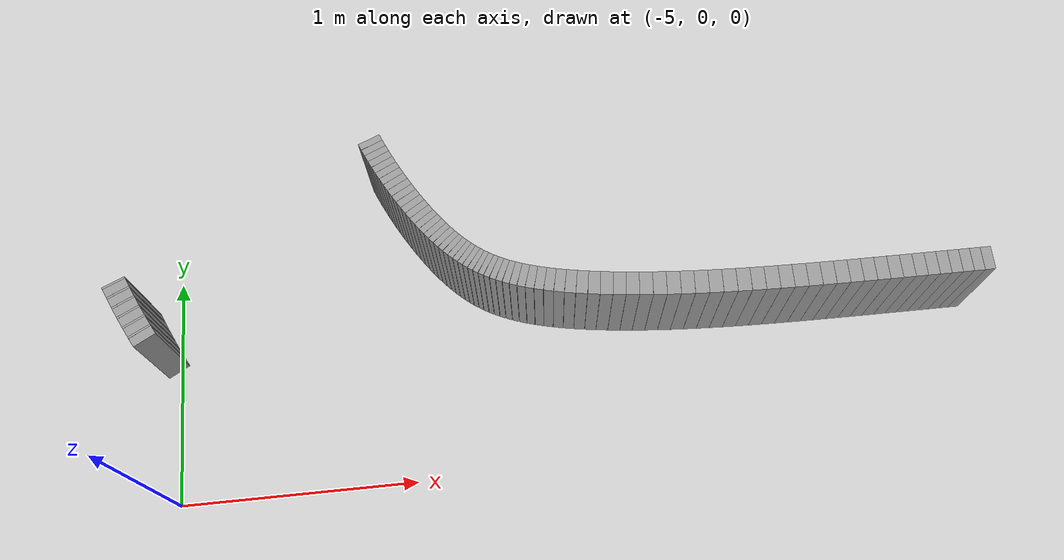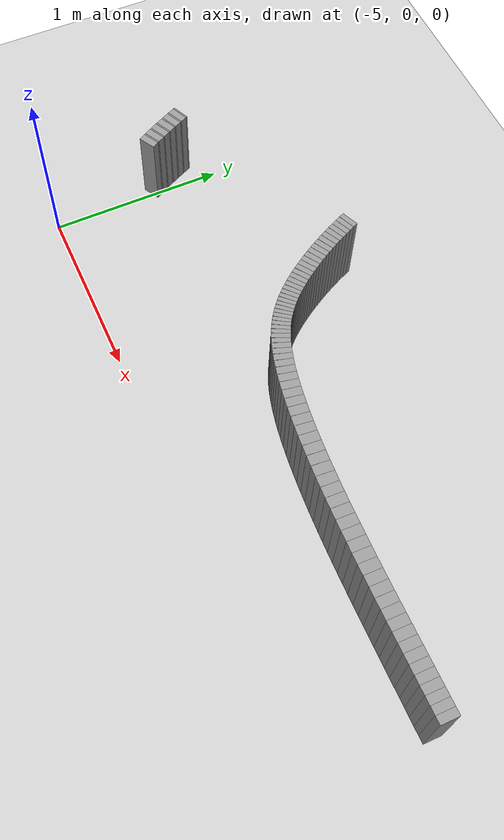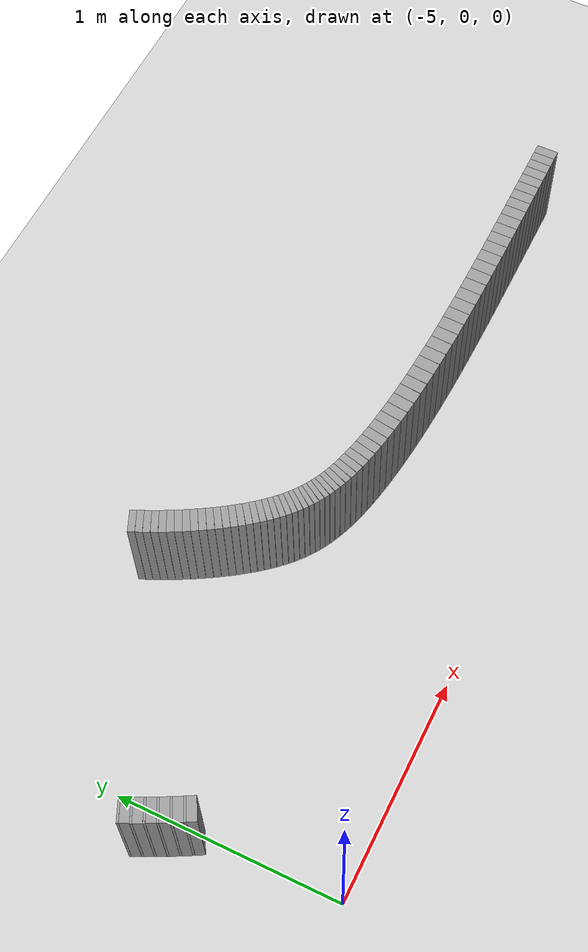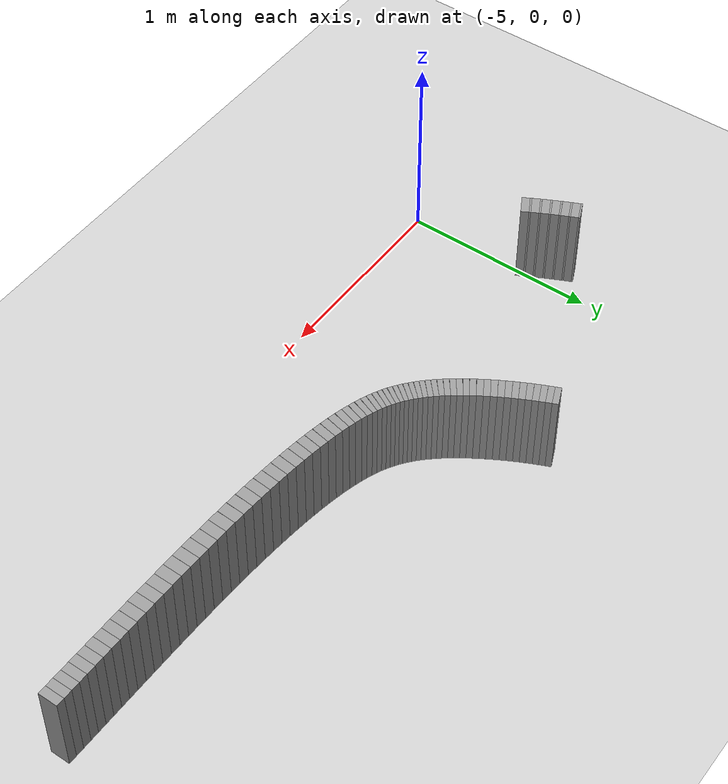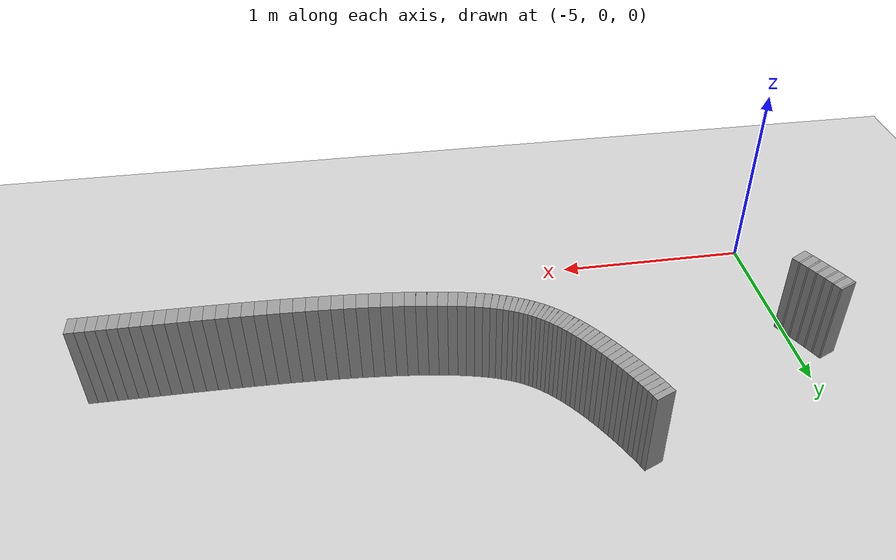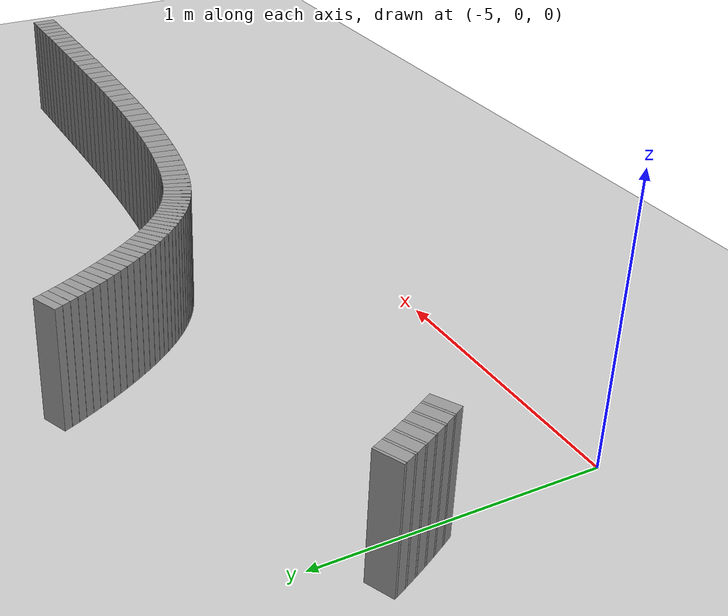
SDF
<sdf version="1.6">
 <world name="default">
  <include><uri>model://ground_plane</uri></include>
  <include><uri>model://sun</uri></include>
  <model name="wall_122_outward">
   <static>true</static>
   <link name="link">
    <collision name="collision">
     <geometry><box><size>0.041142945473792054 0.1 0.45</size></box></geometry>
    </collision>
    <visual name="visual">
     <geometry><box><size>0.041142945473792054 0.1 0.45</size></box></geometry>
     <material>
      <script><uri>file://media/materials/scripts/gazebo.material</uri><name>Gazebo/Gray</name></script>
     </material>
    </visual>
   </link>
   <pose>-5.024026041736398 0.6121663210107635 0.225 0 0 2.0785090174041687</pose>
  </model>
  <model name="wall_123_outward">
   <static>true</static>
   <link name="link">
    <collision name="collision">
     <geometry><box><size>0.008872438982408075 0.1 0.45</size></box></geometry>
    </collision>
    <visual name="visual">
     <geometry><box><size>0.008872438982408075 0.1 0.45</size></box></geometry>
     <material>
      <script><uri>file://media/materials/scripts/gazebo.material</uri><name>Gazebo/Gray</name></script>
     </material>
    </visual>
   </link>
   <pose>-5.036155553327779 0.6340353546015366 0.225 0 0 2.0711152508855033</pose>
  </model>
  <model name="wall_124_outward">
   <static>true</static>
   <link name="link">
    <collision name="collision">
     <geometry><box><size>0.040914196472875676 0.1 0.45</size></box></geometry>
    </collision>
    <visual name="visual">
     <geometry><box><size>0.040914196472875676 0.1 0.45</size></box></geometry>
     <material>
      <script><uri>file://media/materials/scripts/gazebo.material</uri><name>Gazebo/Gray</name></script>
     </material>
    </visual>
   </link>
   <pose>-5.047964029525799 0.655949555389435 0.225 0 0 2.063721484366916</pose>
  </model>
  <model name="wall_125_outward">
   <static>true</static>
   <link name="link">
    <collision name="collision">
     <geometry><box><size>0.008851306950008854 0.1 0.45</size></box></geometry>
    </collision>
    <visual name="visual">
     <geometry><box><size>0.008851306950008854 0.1 0.45</size></box></geometry>
     <material>
      <script><uri>file://media/materials/scripts/gazebo.material</uri><name>Gazebo/Gray</name></script>
     </material>
    </visual>
   </link>
   <pose>-5.059709853115592 0.6778854172393384 0.225 0 0 2.0563453283555537</pose>
  </model>
  <model name="wall_126_outward">
   <static>true</static>
   <link name="link">
    <collision name="collision">
     <geometry><box><size>0.04064562072454017 0.1 0.45</size></box></geometry>
    </collision>
    <visual name="visual">
     <geometry><box><size>0.04064562072454017 0.1 0.45</size></box></geometry>
     <material>
      <script><uri>file://media/materials/scripts/gazebo.material</uri><name>Gazebo/Gray</name></script>
     </material>
    </visual>
   </link>
   <pose>-5.071126977198231 0.6998428953843536 0.225 0 0 2.048969172344092</pose>
  </model>
  <model name="wall_127_outward">
   <static>true</static>
   <link name="link">
    <collision name="collision">
     <geometry><box><size>0.008858725542368358 0.1 0.45</size></box></geometry>
    </collision>
    <visual name="visual">
     <geometry><box><size>0.008858725542368358 0.1 0.45</size></box></geometry>
     <material>
      <script><uri>file://media/materials/scripts/gazebo.material</uri><name>Gazebo/Gray</name></script>
     </material>
    </visual>
   </link>
   <pose>-5.0824877942600395 0.7218337344930423 0.225 0 0 2.04158683400397</pose>
  </model>
  <model name="wall_128_outward">
   <static>true</static>
   <link name="link">
    <collision name="collision">
     <geometry><box><size>0.040339878870088615 0.1 0.45</size></box></geometry>
    </collision>
    <visual name="visual">
     <geometry><box><size>0.040339878870088615 0.1 0.45</size></box></geometry>
     <material>
      <script><uri>file://media/materials/scripts/gazebo.material</uri><name>Gazebo/Gray</name></script>
     </material>
    </visual>
   </link>
   <pose>-5.093512864308113 0.7438239284566764 0.225 0 0 2.034204495664043</pose>
  </model>
  <model name="wall_129_outward">
   <static>true</static>
   <link name="link">
    <collision name="collision">
     <geometry><box><size>0.008878652248758018 0.1 0.45</size></box></geometry>
    </collision>
    <visual name="visual">
     <geometry><box><size>0.008878652248758018 0.1 0.45</size></box></geometry>
     <material>
      <script><uri>file://media/materials/scripts/gazebo.material</uri><name>Gazebo/Gray</name></script>
     </material>
    </visual>
   </link>
   <pose>-5.104483755549556 0.7658523327316571 0.225 0 0 2.0268055512817185</pose>
  </model>
  <model name="wall_130_outward">
   <static>true</static>
   <link name="link">
    <collision name="collision">
     <geometry><box><size>0.0400047557857205 0.1 0.45</size></box></geometry>
    </collision>
    <visual name="visual">
     <geometry><box><size>0.0400047557857205 0.1 0.45</size></box></geometry>
     <material>
      <script><uri>file://media/materials/scripts/gazebo.material</uri><name>Gazebo/Gray</name></script>
     </material>
    </visual>
   </link>
   <pose>-5.115114001773048 0.787861192297196 0.225 0 0 2.019406606899592</pose>
  </model>
  <model name="wall_131_outward">
   <static>true</static>
   <link name="link">
    <collision name="collision">
     <geometry><box><size>0.00887557311261775 0.1 0.45</size></box></geometry>
    </collision>
    <visual name="visual">
     <geometry><box><size>0.00887557311261775 0.1 0.45</size></box></geometry>
     <material>
      <script><uri>file://media/materials/scripts/gazebo.material</uri><name>Gazebo/Gray</name></script>
     </material>
    </visual>
   </link>
   <pose>-5.1256844089710265 0.8098971464156024 0.225 0 0 2.0120102285343955</pose>
  </model>
  <model name="wall_132_outward">
   <static>true</static>
   <link name="link">
    <collision name="collision">
     <geometry><box><size>0.03965152070180939 0.1 0.45</size></box></geometry>
    </collision>
    <visual name="visual">
     <geometry><box><size>0.03965152070180939 0.1 0.45</size></box></geometry>
     <material>
      <script><uri>file://media/materials/scripts/gazebo.material</uri><name>Gazebo/Gray</name></script>
     </material>
    </visual>
   </link>
   <pose>-5.135913025524125 0.8318991985640632 0.225 0 0 2.004613850169155</pose>
  </model>
  <model name="wall_133_outward">
   <static>true</static>
   <link name="link">
    <collision name="collision">
     <geometry><box><size>0.008805243528839777 0.1 0.45</size></box></geometry>
    </collision>
    <visual name="visual">
     <geometry><box><size>0.008805243528839777 0.1 0.45</size></box></geometry>
     <material>
      <script><uri>file://media/materials/scripts/gazebo.material</uri><name>Gazebo/Gray</name></script>
     </material>
    </visual>
   </link>
   <pose>-5.146067766801625 0.8538967218301865 0.225 0 0 1.9972760813809767</pose>
  </model>
  <model name="wall_5_inward">
   <static>true</static>
   <link name="link">
    <collision name="collision">
     <geometry><box><size>0.044114694706202544 0.1 0.45</size></box></geometry>
    </collision>
    <visual name="visual">
     <geometry><box><size>0.044114694706202544 0.1 0.45</size></box></geometry>
     <material>
      <script><uri>file://media/materials/scripts/gazebo.material</uri><name>Gazebo/Gray</name></script>
     </material>
    </visual>
   </link>
   <pose>-1.5694027412168077 0.6000071690598832 0.225 0 0 3.1415022237314965</pose>
  </model>
  <model name="wall_6_inward">
   <static>true</static>
   <link name="link">
    <collision name="collision">
     <geometry><box><size>0.04502484695026555 0.1 0.45</size></box></geometry>
    </collision>
    <visual name="visual">
     <geometry><box><size>0.04502484695026555 0.1 0.45</size></box></geometry>
     <material>
      <script><uri>file://media/materials/scripts/gazebo.material</uri><name>Gazebo/Gray</name></script>
     </material>
    </visual>
   </link>
   <pose>-1.613972511688984 0.6000126235810324 0.225 0 0 3.141438966077035</pose>
  </model>
  <model name="wall_7_inward">
   <static>true</static>
   <link name="link">
    <collision name="collision">
     <geometry><box><size>0.04606252061997925 0.1 0.45</size></box></geometry>
    </collision>
    <visual name="visual">
     <geometry><box><size>0.04606252061997925 0.1 0.45</size></box></geometry>
     <material>
      <script><uri>file://media/materials/scripts/gazebo.material</uri><name>Gazebo/Gray</name></script>
     </material>
    </visual>
   </link>
   <pose>-1.6595161945480026 0.600021598170396 0.225 0 0 3.1413532089833907</pose>
  </model>
  <model name="wall_8_inward">
   <static>true</static>
   <link name="link">
    <collision name="collision">
     <geometry><box><size>0.04719798910151945 0.1 0.45</size></box></geometry>
    </collision>
    <visual name="visual">
     <geometry><box><size>0.04719798910151945 0.1 0.45</size></box></geometry>
     <material>
      <script><uri>file://media/materials/scripts/gazebo.material</uri><name>Gazebo/Gray</name></script>
     </material>
    </visual>
   </link>
   <pose>-1.706146447175279 0.6000357299413919 0.225 0 0 3.141227508364575</pose>
  </model>
  <model name="wall_9_inward">
   <static>true</static>
   <link name="link">
    <collision name="collision">
     <geometry><box><size>0.048397467047061556 0.1 0.45</size></box></geometry>
    </collision>
    <visual name="visual">
     <geometry><box><size>0.048397467047061556 0.1 0.45</size></box></geometry>
     <material>
      <script><uri>file://media/materials/scripts/gazebo.material</uri><name>Gazebo/Gray</name></script>
     </material>
    </visual>
   </link>
   <pose>-1.7539441700761025 0.6000575470729226 0.225 0 0 3.1410471675136797</pose>
  </model>
  <model name="wall_10_inward">
   <static>true</static>
   <link name="link">
    <collision name="collision">
     <geometry><box><size>0.04962871441680289 0.1 0.45</size></box></geometry>
    </collision>
    <visual name="visual">
     <geometry><box><size>0.04962871441680289 0.1 0.45</size></box></geometry>
     <material>
      <script><uri>file://media/materials/scripts/gazebo.material</uri><name>Gazebo/Gray</name></script>
     </material>
    </visual>
   </link>
   <pose>-1.8029572490975116 0.6000908096334955 0.225 0 0 3.1407841502282876</pose>
  </model>
  <model name="wall_11_inward">
   <static>true</static>
   <link name="link">
    <collision name="collision">
     <geometry><box><size>0.050863329799138185 0.1 0.45</size></box></geometry>
    </collision>
    <visual name="visual">
     <geometry><box><size>0.050863329799138185 0.1 0.45</size></box></geometry>
     <material>
      <script><uri>file://media/materials/scripts/gazebo.material</uri><name>Gazebo/Gray</name></script>
     </material>
    </visual>
   </link>
   <pose>-1.8532032455794 0.6001407202536482 0.225 0 0 3.140418993190748</pose>
  </model>
  <model name="wall_12_inward">
   <static>true</static>
   <link name="link">
    <collision name="collision">
     <geometry><box><size>0.052065318603737434 0.1 0.45</size></box></geometry>
    </collision>
    <visual name="visual">
     <geometry><box><size>0.052065318603737434 0.1 0.45</size></box></geometry>
     <material>
      <script><uri>file://media/materials/scripts/gazebo.material</uri><name>Gazebo/Gray</name></script>
     </material>
    </visual>
   </link>
   <pose>-1.9046675162822317 0.6002138518188 0.225 0 0 3.1399299938718435</pose>
  </model>
  <model name="wall_13_inward">
   <static>true</static>
   <link name="link">
    <collision name="collision">
     <geometry><box><size>0.053199028276740404 0.1 0.45</size></box></geometry>
    </collision>
    <visual name="visual">
     <geometry><box><size>0.053199028276740404 0.1 0.45</size></box></geometry>
     <material>
      <script><uri>file://media/materials/scripts/gazebo.material</uri><name>Gazebo/Gray</name></script>
     </material>
    </visual>
   </link>
   <pose>-1.9572995824392652 0.6003187234511045 0.225 0 0 3.139277263429524</pose>
  </model>
  <model name="wall_14_inward">
   <static>true</static>
   <link name="link">
    <collision name="collision">
     <geometry><box><size>0.05424358501450073 0.1 0.45</size></box></geometry>
    </collision>
    <visual name="visual">
     <geometry><box><size>0.05424358501450073 0.1 0.45</size></box></geometry>
     <material>
      <script><uri>file://media/materials/scripts/gazebo.material</uri><name>Gazebo/Gray</name></script>
     </material>
    </visual>
   </link>
   <pose>-2.011020680657064 0.6004665570256168 0.225 0 0 3.1384127191674325</pose>
  </model>
  <model name="wall_15_inward">
   <static>true</static>
   <link name="link">
    <collision name="collision">
     <geometry><box><size>0.05517984735419351 0.1 0.45</size></box></geometry>
    </collision>
    <visual name="visual">
     <geometry><box><size>0.05517984735419351 0.1 0.45</size></box></geometry>
     <material>
      <script><uri>file://media/materials/scripts/gazebo.material</uri><name>Gazebo/Gray</name></script>
     </material>
    </visual>
   </link>
   <pose>-2.065732004940203 0.600671370158636 0.225 0 0 3.137295138194895</pose>
  </model>
  <model name="wall_16_inward">
   <static>true</static>
   <link name="link">
    <collision name="collision">
     <geometry><box><size>0.055990427157332316 0.1 0.45</size></box></geometry>
    </collision>
    <visual name="visual">
     <geometry><box><size>0.055990427157332316 0.1 0.45</size></box></geometry>
     <material>
      <script><uri>file://media/materials/scripts/gazebo.material</uri><name>Gazebo/Gray</name></script>
     </material>
    </visual>
   </link>
   <pose>-2.121316431024006 0.6009497932287478 0.225 0 0 3.1358825281221283</pose>
  </model>
  <model name="wall_17_inward">
   <static>true</static>
   <link name="link">
    <collision name="collision">
     <geometry><box><size>0.05666540373891636 0.1 0.45</size></box></geometry>
    </collision>
    <visual name="visual">
     <geometry><box><size>0.05666540373891636 0.1 0.45</size></box></geometry>
     <material>
      <script><uri>file://media/materials/scripts/gazebo.material</uri><name>Gazebo/Gray</name></script>
     </material>
    </visual>
   </link>
   <pose>-2.1776430970318037 0.6013216330322042 0.225 0 0 3.1341106114970665</pose>
  </model>
  <model name="wall_18_inward">
   <static>true</static>
   <link name="link">
    <collision name="collision">
     <geometry><box><size>0.057209568634843014 0.1 0.45</size></box></geometry>
    </collision>
    <visual name="visual">
     <geometry><box><size>0.057209568634843014 0.1 0.45</size></box></geometry>
     <material>
      <script><uri>file://media/materials/scripts/gazebo.material</uri><name>Gazebo/Gray</name></script>
     </material>
    </visual>
   </link>
   <pose>-2.234578455080479 0.6018099841040598 0.225 0 0 3.1319309523008556</pose>
  </model>
  <model name="wall_19_inward">
   <static>true</static>
   <link name="link">
    <collision name="collision">
     <geometry><box><size>0.057623760290246344 0.1 0.45</size></box></geometry>
    </collision>
    <visual name="visual">
     <geometry><box><size>0.057623760290246344 0.1 0.45</size></box></geometry>
     <material>
      <script><uri>file://media/materials/scripts/gazebo.material</uri><name>Gazebo/Gray</name></script>
     </material>
    </visual>
   </link>
   <pose>-2.291991607648232 0.6024405124984834 0.225 0 0 3.129300129450262</pose>
  </model>
  <model name="wall_20_inward">
   <static>true</static>
   <link name="link">
    <collision name="collision">
     <geometry><box><size>0.05791748242532488 0.1 0.45</size></box></geometry>
    </collision>
    <visual name="visual">
     <geometry><box><size>0.05791748242532488 0.1 0.45</size></box></geometry>
     <material>
      <script><uri>file://media/materials/scripts/gazebo.material</uri><name>Gazebo/Gray</name></script>
     </material>
    </visual>
   </link>
   <pose>-2.34975660405332 0.6032415484626484 0.225 0 0 3.126160633059009</pose>
  </model>
  <model name="wall_21_inward">
   <static>true</static>
   <link name="link">
    <collision name="collision">
     <geometry><box><size>0.05810424305315266 0.1 0.45</size></box></geometry>
    </collision>
    <visual name="visual">
     <geometry><box><size>0.05810424305315266 0.1 0.45</size></box></geometry>
     <material>
      <script><uri>file://media/materials/scripts/gazebo.material</uri><name>Gazebo/Gray</name></script>
     </material>
    </visual>
   </link>
   <pose>-2.4077587108539573 0.6042437393126319 0.225 0 0 3.1224769921390108</pose>
  </model>
  <model name="wall_22_inward">
   <static>true</static>
   <link name="link">
    <collision name="collision">
     <geometry><box><size>0.058203471093671175 0.1 0.45</size></box></geometry>
    </collision>
    <visual name="visual">
     <geometry><box><size>0.058203471093671175 0.1 0.45</size></box></geometry>
     <material>
      <script><uri>file://media/materials/scripts/gazebo.material</uri><name>Gazebo/Gray</name></script>
     </material>
    </visual>
   </link>
   <pose>-2.465899305530777 0.6054794402787166 0.225 0 0 3.1182110148935482</pose>
  </model>
  <model name="wall_23_inward">
   <static>true</static>
   <link name="link">
    <collision name="collision">
     <geometry><box><size>0.05822657243579787 0.1 0.45</size></box></geometry>
    </collision>
    <visual name="visual">
     <geometry><box><size>0.05822657243579787 0.1 0.45</size></box></geometry>
     <material>
      <script><uri>file://media/materials/scripts/gazebo.material</uri><name>Gazebo/Gray</name></script>
     </material>
    </visual>
   </link>
   <pose>-2.524094762754588 0.6069819386376214 0.225 0 0 3.113350448819496</pose>
  </model>
  <model name="wall_24_inward">
   <static>true</static>
   <link name="link">
    <collision name="collision">
     <geometry><box><size>0.05818144687248782 0.1 0.45</size></box></geometry>
    </collision>
    <visual name="visual">
     <geometry><box><size>0.05818144687248782 0.1 0.45</size></box></geometry>
     <material>
      <script><uri>file://media/materials/scripts/gazebo.material</uri><name>Gazebo/Gray</name></script>
     </material>
    </visual>
   </link>
   <pose>-2.5822706210296626 0.6087849359437343 0.225 0 0 3.1078681855642545</pose>
  </model>
  <model name="wall_25_inward">
   <static>true</static>
   <link name="link">
    <collision name="collision">
     <geometry><box><size>0.0580785379857967 0.1 0.45</size></box></geometry>
    </collision>
    <visual name="visual">
     <geometry><box><size>0.0580785379857967 0.1 0.45</size></box></geometry>
     <material>
      <script><uri>file://media/materials/scripts/gazebo.material</uri><name>Gazebo/Gray</name></script>
     </material>
    </visual>
   </link>
   <pose>-2.640361032371983 0.6109223560542775 0.225 0 0 3.1017554642645027</pose>
  </model>
  <model name="wall_26_inward">
   <static>true</static>
   <link name="link">
    <collision name="collision">
     <geometry><box><size>0.05790730326123088 0.1 0.45</size></box></geometry>
    </collision>
    <visual name="visual">
     <geometry><box><size>0.05790730326123088 0.1 0.45</size></box></geometry>
     <material>
      <script><uri>file://media/materials/scripts/gazebo.material</uri><name>Gazebo/Gray</name></script>
     </material>
    </visual>
   </link>
   <pose>-2.6982995113077273 0.613427010899124 0.225 0 0 3.0950145725020155</pose>
  </model>
  <model name="wall_27_inward">
   <static>true</static>
   <link name="link">
    <collision name="collision">
     <geometry><box><size>0.057655958109674346 0.1 0.45</size></box></geometry>
    </collision>
    <visual name="visual">
     <geometry><box><size>0.057655958109674346 0.1 0.45</size></box></geometry>
     <material>
      <script><uri>file://media/materials/scripts/gazebo.material</uri><name>Gazebo/Gray</name></script>
     </material>
    </visual>
   </link>
   <pose>-2.7560077396347005 0.6163307007493612 0.225 0 0 3.0876059418911908</pose>
  </model>
  <model name="wall_28_inward">
   <static>true</static>
   <link name="link">
    <collision name="collision">
     <geometry><box><size>0.05730767138166468 0.1 0.45</size></box></geometry>
    </collision>
    <visual name="visual">
     <geometry><box><size>0.05730767138166468 0.1 0.45</size></box></geometry>
     <material>
      <script><uri>file://media/materials/scripts/gazebo.material</uri><name>Gazebo/Gray</name></script>
     </material>
    </visual>
   </link>
   <pose>-2.813392361257442 0.6196638905753212 0.225 0 0 3.079515095488068</pose>
  </model>
  <model name="wall_29_inward">
   <static>true</static>
   <link name="link">
    <collision name="collision">
     <geometry><box><size>0.05683665933647782 0.1 0.45</size></box></geometry>
    </collision>
    <visual name="visual">
     <geometry><box><size>0.05683665933647782 0.1 0.45</size></box></geometry>
     <material>
      <script><uri>file://media/materials/scripts/gazebo.material</uri><name>Gazebo/Gray</name></script>
     </material>
    </visual>
   </link>
   <pose>-2.870337916889655 0.6234549628170477 0.225 0 0 3.0706826922995445</pose>
  </model>
  <model name="wall_30_inward">
   <static>true</static>
   <link name="link">
    <collision name="collision">
     <geometry><box><size>0.05620935138961899 0.1 0.45</size></box></geometry>
    </collision>
    <visual name="visual">
     <geometry><box><size>0.05620935138961899 0.1 0.45</size></box></geometry>
     <material>
      <script><uri>file://media/materials/scripts/gazebo.material</uri><name>Gazebo/Gray</name></script>
     </material>
    </visual>
   </link>
   <pose>-2.926698409827527 0.6277294172121988 0.225 0 0 3.0610563709558103</pose>
  </model>
  <model name="wall_31_inward">
   <static>true</static>
   <link name="link">
    <collision name="collision">
     <geometry><box><size>0.05539122733360196 0.1 0.45</size></box></geometry>
    </collision>
    <visual name="visual">
     <geometry><box><size>0.05539122733360196 0.1 0.45</size></box></geometry>
     <material>
      <script><uri>file://media/materials/scripts/gazebo.material</uri><name>Gazebo/Gray</name></script>
     </material>
    </visual>
   </link>
   <pose>-2.9822928194549227 0.6325093185248719 0.225 0 0 3.0505173339234055</pose>
  </model>
  <model name="wall_32_inward">
   <static>true</static>
   <link name="link">
    <collision name="collision">
     <geometry><box><size>0.05436252197968656 0.1 0.45</size></box></geometry>
    </collision>
    <visual name="visual">
     <geometry><box><size>0.05436252197968656 0.1 0.45</size></box></geometry>
     <material>
      <script><uri>file://media/materials/scripts/gazebo.material</uri><name>Gazebo/Gray</name></script>
     </material>
    </visual>
   </link>
   <pose>-3.0369118522339384 0.6378132708436748 0.225 0 0 3.038950344450218</pose>
  </model>
  <model name="wall_33_inward">
   <static>true</static>
   <link name="link">
    <collision name="collision">
     <geometry><box><size>0.0530982427256126 0.1 0.45</size></box></geometry>
    </collision>
    <visual name="visual">
     <geometry><box><size>0.0530982427256126 0.1 0.45</size></box></geometry>
     <material>
      <script><uri>file://media/materials/scripts/gazebo.material</uri><name>Gazebo/Gray</name></script>
     </material>
    </visual>
   </link>
   <pose>-3.0903226472074445 0.6436548322387449 0.225 0 0 3.0262101985240077</pose>
  </model>
  <model name="wall_34_inward">
   <static>true</static>
   <link name="link">
    <collision name="collision">
     <geometry><box><size>0.05157775215306176 0.1 0.45</size></box></geometry>
    </collision>
    <visual name="visual">
     <geometry><box><size>0.05157775215306176 0.1 0.45</size></box></geometry>
     <material>
      <script><uri>file://media/materials/scripts/gazebo.material</uri><name>Gazebo/Gray</name></script>
     </material>
    </visual>
   </link>
   <pose>-3.1422682890118683 0.6500407921472809 0.225 0 0 3.012127189662075</pose>
  </model>
  <model name="wall_35_inward">
   <static>true</static>
   <link name="link">
    <collision name="collision">
     <geometry><box><size>0.04979954249327518 0.1 0.45</size></box></geometry>
    </collision>
    <visual name="visual">
     <geometry><box><size>0.04979954249327518 0.1 0.45</size></box></geometry>
     <material>
      <script><uri>file://media/materials/scripts/gazebo.material</uri><name>Gazebo/Gray</name></script>
     </material>
    </visual>
   </link>
   <pose>-3.192479448115737 0.6569705467292226 0.225 0 0 2.9964921377882625</pose>
  </model>
  <model name="wall_36_inward">
   <static>true</static>
   <link name="link">
    <collision name="collision">
     <geometry><box><size>0.04778017374196022 0.1 0.45</size></box></geometry>
    </collision>
    <visual name="visual">
     <geometry><box><size>0.04778017374196022 0.1 0.45</size></box></geometry>
     <material>
      <script><uri>file://media/materials/scripts/gazebo.material</uri><name>Gazebo/Gray</name></script>
     </material>
    </visual>
   </link>
   <pose>-3.240692988270731 0.6644354724898505 0.225 0 0 2.979111971526933</pose>
  </model>
  <model name="wall_37_inward">
   <static>true</static>
   <link name="link">
    <collision name="collision">
     <geometry><box><size>0.04553847604647581 0.1 0.45</size></box></geometry>
    </collision>
    <visual name="visual">
     <geometry><box><size>0.04553847604647581 0.1 0.45</size></box></geometry>
     <material>
      <script><uri>file://media/materials/scripts/gazebo.material</uri><name>Gazebo/Gray</name></script>
     </material>
    </visual>
   </link>
   <pose>-3.286662405177848 0.6724168401573555 0.225 0 0 2.959789792208272</pose>
  </model>
  <model name="wall_38_inward">
   <static>true</static>
   <link name="link">
    <collision name="collision">
     <geometry><box><size>0.04311300436406841 0.1 0.45</size></box></geometry>
    </collision>
    <visual name="visual">
     <geometry><box><size>0.04311300436406841 0.1 0.45</size></box></geometry>
     <material>
      <script><uri>file://media/materials/scripts/gazebo.material</uri><name>Gazebo/Gray</name></script>
     </material>
    </visual>
   </link>
   <pose>-3.3301691310444537 0.6808850222901165 0.225 0 0 2.9383341282425777</pose>
  </model>
  <model name="wall_39_inward">
   <static>true</static>
   <link name="link">
    <collision name="collision">
     <geometry><box><size>0.04055283838251975 0.1 0.45</size></box></geometry>
    </collision>
    <visual name="visual">
     <geometry><box><size>0.04055283838251975 0.1 0.45</size></box></geometry>
     <material>
      <script><uri>file://media/materials/scripts/gazebo.material</uri><name>Gazebo/Gray</name></script>
     </material>
    </visual>
   </link>
   <pose>-3.3710381232453974 0.6897997547031309 0.225 0 0 2.91459379477341</pose>
  </model>
  <model name="wall_40_inward">
   <static>true</static>
   <link name="link">
    <collision name="collision">
     <geometry><box><size>0.037927632998173685 0.1 0.45</size></box></geometry>
    </collision>
    <visual name="visual">
     <geometry><box><size>0.037927632998173685 0.1 0.45</size></box></geometry>
     <material>
      <script><uri>file://media/materials/scripts/gazebo.material</uri><name>Gazebo/Gray</name></script>
     </material>
    </visual>
   </link>
   <pose>-3.4091537790690305 0.6991126443238405 0.225 0 0 2.888441914796172</pose>
  </model>
  <model name="wall_41_inward">
   <static>true</static>
   <link name="link">
    <collision name="collision">
     <geometry><box><size>0.0353169287375225 0.1 0.45</size></box></geometry>
    </collision>
    <visual name="visual">
     <geometry><box><size>0.0353169287375225 0.1 0.45</size></box></geometry>
     <material>
      <script><uri>file://media/materials/scripts/gazebo.material</uri><name>Gazebo/Gray</name></script>
     </material>
    </visual>
   </link>
   <pose>-3.444475474880965 0.7087716169232949 0.225 0 0 2.8598619653751594</pose>
  </model>
  <model name="wall_42_inward">
   <static>true</static>
   <link name="link">
    <collision name="collision">
     <geometry><box><size>0.03279821289261457 0.1 0.45</size></box></geometry>
    </collision>
    <visual name="visual">
     <geometry><box><size>0.03279821289261457 0.1 0.45</size></box></geometry>
     <material>
      <script><uri>file://media/materials/scripts/gazebo.material</uri><name>Gazebo/Gray</name></script>
     </material>
    </visual>
   </link>
   <pose>-3.4770416016682972 0.7187258987213208 0.225 0 0 2.828888561663869</pose>
  </model>
  <model name="wall_43_inward">
   <static>true</static>
   <link name="link">
    <collision name="collision">
     <geometry><box><size>0.030456089490415433 0.1 0.45</size></box></geometry>
    </collision>
    <visual name="visual">
     <geometry><box><size>0.030456089490415433 0.1 0.45</size></box></geometry>
     <material>
      <script><uri>file://media/materials/scripts/gazebo.material</uri><name>Gazebo/Gray</name></script>
     </material>
    </visual>
   </link>
   <pose>-3.5069714509785577 0.7289340023040194 0.225 0 0 2.7956764437427117</pose>
  </model>
  <model name="wall_44_inward">
   <static>true</static>
   <link name="link">
    <collision name="collision">
     <geometry><box><size>0.02835631192351537 0.1 0.45</size></box></geometry>
    </collision>
    <visual name="visual">
     <geometry><box><size>0.02835631192351537 0.1 0.45</size></box></geometry>
     <material>
      <script><uri>file://media/materials/scripts/gazebo.material</uri><name>Gazebo/Gray</name></script>
     </material>
    </visual>
   </link>
   <pose>-3.5344582714510047 0.7393710352591658 0.225 0 0 2.7604635891947007</pose>
  </model>
  <model name="wall_45_inward">
   <static>true</static>
   <link name="link">
    <collision name="collision">
     <geometry><box><size>0.026569198202205633 0.1 0.45</size></box></geometry>
    </collision>
    <visual name="visual">
     <geometry><box><size>0.026569198202205633 0.1 0.45</size></box></geometry>
     <material>
      <script><uri>file://media/materials/scripts/gazebo.material</uri><name>Gazebo/Gray</name></script>
     </material>
    </visual>
   </link>
   <pose>-3.5597597685979663 0.7500378422816912 0.225 0 0 2.7235668963417243</pose>
  </model>
  <model name="wall_46_inward">
   <static>true</static>
   <link name="link">
    <collision name="collision">
     <geometry><box><size>0.02512512759735956 0.1 0.45</size></box></geometry>
    </collision>
    <visual name="visual">
     <geometry><box><size>0.02512512759735956 0.1 0.45</size></box></geometry>
     <material>
      <script><uri>file://media/materials/scripts/gazebo.material</uri><name>Gazebo/Gray</name></script>
     </material>
    </visual>
   </link>
   <pose>-3.5831784758552754 0.7609647466614771 0.225 0 0 2.6854265562992294</pose>
  </model>
  <model name="wall_47_inward">
   <static>true</static>
   <link name="link">
    <collision name="collision">
     <geometry><box><size>0.024038334481725113 0.1 0.45</size></box></geometry>
    </collision>
    <visual name="visual">
     <geometry><box><size>0.024038334481725113 0.1 0.45</size></box></geometry>
     <material>
      <script><uri>file://media/materials/scripts/gazebo.material</uri><name>Gazebo/Gray</name></script>
     </material>
    </visual>
   </link>
   <pose>-3.605032139216762 0.7722097226660634 0.225 0 0 2.646444889285213</pose>
  </model>
  <model name="wall_48_inward">
   <static>true</static>
   <link name="link">
    <collision name="collision">
     <geometry><box><size>0.023308133333371027 0.1 0.45</size></box></geometry>
    </collision>
    <visual name="visual">
     <geometry><box><size>0.023308133333371027 0.1 0.45</size></box></geometry>
     <material>
      <script><uri>file://media/materials/scripts/gazebo.material</uri><name>Gazebo/Gray</name></script>
     </material>
    </visual>
   </link>
   <pose>-3.6256365707200455 0.783857162935833 0.225 0 0 2.607124089746958</pose>
  </model>
  <model name="wall_49_inward">
   <static>true</static>
   <link name="link">
    <collision name="collision">
     <geometry><box><size>0.022897864320791793 0.1 0.45</size></box></geometry>
    </collision>
    <visual name="visual">
     <geometry><box><size>0.022897864320791793 0.1 0.45</size></box></geometry>
     <material>
      <script><uri>file://media/materials/scripts/gazebo.material</uri><name>Gazebo/Gray</name></script>
     </material>
    </visual>
   </link>
   <pose>-3.645281246049347 0.7960074661948089 0.225 0 0 2.5678844940723105</pose>
  </model>
  <model name="wall_50_inward">
   <static>true</static>
   <link name="link">
    <collision name="collision">
     <geometry><box><size>0.02277371714127371 0.1 0.45</size></box></geometry>
    </collision>
    <visual name="visual">
     <geometry><box><size>0.02277371714127371 0.1 0.45</size></box></geometry>
     <material>
      <script><uri>file://media/materials/scripts/gazebo.material</uri><name>Gazebo/Gray</name></script>
     </material>
    </visual>
   </link>
   <pose>-3.66421436515856 0.8087673535239643 0.225 0 0 2.5291459607591187</pose>
  </model>
  <model name="wall_51_inward">
   <static>true</static>
   <link name="link">
    <collision name="collision">
     <geometry><box><size>0.022884122603239875 0.1 0.45</size></box></geometry>
    </collision>
    <visual name="visual">
     <geometry><box><size>0.022884122603239875 0.1 0.45</size></box></geometry>
     <material>
      <script><uri>file://media/materials/scripts/gazebo.material</uri><name>Gazebo/Gray</name></script>
     </material>
    </visual>
   </link>
   <pose>-3.682638118116015 0.8222409538858106 0.225 0 0 2.4912584636971453</pose>
  </model>
  <model name="wall_52_inward">
   <static>true</static>
   <link name="link">
    <collision name="collision">
     <geometry><box><size>0.023179238125302853 0.1 0.45</size></box></geometry>
    </collision>
    <visual name="visual">
     <geometry><box><size>0.023179238125302853 0.1 0.45</size></box></geometry>
     <material>
      <script><uri>file://media/materials/scripts/gazebo.material</uri><name>Gazebo/Gray</name></script>
     </material>
    </visual>
   </link>
   <pose>-3.7007045657603914 0.8365197037110372 0.225 0 0 2.4545088147749836</pose>
  </model>
  <model name="wall_53_inward">
   <static>true</static>
   <link name="link">
    <collision name="collision">
     <geometry><box><size>0.023621818873041576 0.1 0.45</size></box></geometry>
    </collision>
    <visual name="visual">
     <geometry><box><size>0.023621818873041576 0.1 0.45</size></box></geometry>
     <material>
      <script><uri>file://media/materials/scripts/gazebo.material</uri><name>Gazebo/Gray</name></script>
     </material>
    </visual>
   </link>
   <pose>-3.7185246524822384 0.851680764227692 0.225 0 0 2.4191121474559183</pose>
  </model>
  <model name="wall_54_inward">
   <static>true</static>
   <link name="link">
    <collision name="collision">
     <geometry><box><size>0.024175588478618032 0.1 0.45</size></box></geometry>
    </collision>
    <visual name="visual">
     <geometry><box><size>0.024175588478618032 0.1 0.45</size></box></geometry>
     <material>
      <script><uri>file://media/materials/scripts/gazebo.material</uri><name>Gazebo/Gray</name></script>
     </material>
    </visual>
   </link>
   <pose>-3.736176941473471 0.867786077336437 0.225 0 0 2.3852570320068116</pose>
  </model>
  <model name="wall_55_inward">
   <static>true</static>
   <link name="link">
    <collision name="collision">
     <geometry><box><size>0.02481735584061068 0.1 0.45</size></box></geometry>
    </collision>
    <visual name="visual">
     <geometry><box><size>0.02481735584061068 0.1 0.45</size></box></geometry>
     <material>
      <script><uri>file://media/materials/scripts/gazebo.material</uri><name>Gazebo/Gray</name></script>
     </material>
    </visual>
   </link>
   <pose>-3.7537156668084526 0.8848832893776397 0.225 0 0 2.353047048145544</pose>
  </model>
  <model name="wall_56_inward">
   <static>true</static>
   <link name="link">
    <collision name="collision">
     <geometry><box><size>0.025531199169228226 0.1 0.45</size></box></geometry>
    </collision>
    <visual name="visual">
     <geometry><box><size>0.025531199169228226 0.1 0.45</size></box></geometry>
     <material>
      <script><uri>file://media/materials/scripts/gazebo.material</uri><name>Gazebo/Gray</name></script>
     </material>
    </visual>
   </link>
   <pose>-3.771180553842137 0.9030099288756204 0.225 0 0 2.3225920854545934</pose>
  </model>
  <model name="wall_57_inward">
   <static>true</static>
   <link name="link">
    <collision name="collision">
     <geometry><box><size>0.02629561222829547 0.1 0.45</size></box></geometry>
    </collision>
    <visual name="visual">
     <geometry><box><size>0.02629561222829547 0.1 0.45</size></box></geometry>
     <material>
      <script><uri>file://media/materials/scripts/gazebo.material</uri><name>Gazebo/Gray</name></script>
     </material>
    </visual>
   </link>
   <pose>-3.7885992537371926 0.9221920985661325 0.225 0 0 2.2939319250224175</pose>
  </model>
  <model name="wall_58_inward">
   <static>true</static>
   <link name="link">
    <collision name="collision">
     <geometry><box><size>0.027101704034516175 0.1 0.45</size></box></geometry>
    </collision>
    <visual name="visual">
     <geometry><box><size>0.027101704034516175 0.1 0.45</size></box></geometry>
     <material>
      <script><uri>file://media/materials/scripts/gazebo.material</uri><name>Gazebo/Gray</name></script>
     </material>
    </visual>
   </link>
   <pose>-3.805990893643707 0.9424460080927715 0.225 0 0 2.2670901254596267</pose>
  </model>
  <model name="wall_59_inward">
   <static>true</static>
   <link name="link">
    <collision name="collision">
     <geometry><box><size>0.02793214862105365 0.1 0.45</size></box></geometry>
    </collision>
    <visual name="visual">
     <geometry><box><size>0.02793214862105365 0.1 0.45</size></box></geometry>
     <material>
      <script><uri>file://media/materials/scripts/gazebo.material</uri><name>Gazebo/Gray</name></script>
     </material>
    </visual>
   </link>
   <pose>-3.823368684114148 0.9637784967448203 0.225 0 0 2.2420600920032197</pose>
  </model>
  <model name="wall_60_inward">
   <static>true</static>
   <link name="link">
    <collision name="collision">
     <geometry><box><size>0.028761018059561865 0.1 0.45</size></box></geometry>
    </collision>
    <visual name="visual">
     <geometry><box><size>0.028761018059561865 0.1 0.45</size></box></geometry>
     <material>
      <script><uri>file://media/materials/scripts/gazebo.material</uri><name>Gazebo/Gray</name></script>
     </material>
    </visual>
   </link>
   <pose>-3.840735219614229 0.9861799149858962 0.225 0 0 2.218796035590765</pose>
  </model>
  <model name="wall_61_inward">
   <static>true</static>
   <link name="link">
    <collision name="collision">
     <geometry><box><size>0.029572183468762378 0.1 0.45</size></box></geometry>
    </collision>
    <visual name="visual">
     <geometry><box><size>0.029572183468762378 0.1 0.45</size></box></geometry>
     <material>
      <script><uri>file://media/materials/scripts/gazebo.material</uri><name>Gazebo/Gray</name></script>
     </material>
    </visual>
   </link>
   <pose>-3.858083353727108 1.0096241830844261 0.225 0 0 2.197203140295776</pose>
  </model>
  <model name="wall_62_inward">
   <static>true</static>
   <link name="link">
    <collision name="collision">
     <geometry><box><size>0.030319647839132827 0.1 0.45</size></box></geometry>
    </collision>
    <visual name="visual">
     <geometry><box><size>0.030319647839132827 0.1 0.45</size></box></geometry>
     <material>
      <script><uri>file://media/materials/scripts/gazebo.material</uri><name>Gazebo/Gray</name></script>
     </material>
    </visual>
   </link>
   <pose>-3.875391237531204 1.0340599204308163 0.225 0 0 2.177191534232134</pose>
  </model>
  <model name="wall_63_inward">
   <static>true</static>
   <link name="link">
    <collision name="collision">
     <geometry><box><size>0.030970506632248266 0.1 0.45</size></box></geometry>
    </collision>
    <visual name="visual">
     <geometry><box><size>0.030970506632248266 0.1 0.45</size></box></geometry>
     <material>
      <script><uri>file://media/materials/scripts/gazebo.material</uri><name>Gazebo/Gray</name></script>
     </material>
    </visual>
   </link>
   <pose>-3.892617173147427 1.0594036800987179 0.225 0 0 2.158530508700088</pose>
  </model>
  <model name="wall_64_inward">
   <static>true</static>
   <link name="link">
    <collision name="collision">
     <geometry><box><size>0.03150609195178656 0.1 0.45</size></box></geometry>
    </collision>
    <visual name="visual">
     <geometry><box><size>0.03150609195178656 0.1 0.45</size></box></geometry>
     <material>
      <script><uri>file://media/materials/scripts/gazebo.material</uri><name>Gazebo/Gray</name></script>
     </material>
    </visual>
   </link>
   <pose>-3.909707713194445 1.0855507701469969 0.225 0 0 2.1410585399409925</pose>
  </model>
  <model name="wall_65_inward">
   <static>true</static>
   <link name="link">
    <collision name="collision">
     <geometry><box><size>0.03190537553723439 0.1 0.45</size></box></geometry>
    </collision>
    <visual name="visual">
     <geometry><box><size>0.03190537553723439 0.1 0.45</size></box></geometry>
     <material>
      <script><uri>file://media/materials/scripts/gazebo.material</uri><name>Gazebo/Gray</name></script>
     </material>
    </visual>
   </link>
   <pose>-3.926600887323732 1.112379961023266 0.225 0 0 2.124519847906174</pose>
  </model>
  <model name="wall_66_inward">
   <static>true</static>
   <link name="link">
    <collision name="collision">
     <geometry><box><size>0.03216577763139422 0.1 0.45</size></box></geometry>
    </collision>
    <visual name="visual">
     <geometry><box><size>0.03216577763139422 0.1 0.45</size></box></geometry>
     <material>
      <script><uri>file://media/materials/scripts/gazebo.material</uri><name>Gazebo/Gray</name></script>
     </material>
    </visual>
   </link>
   <pose>-3.94323003004968 1.1397603523264608 0.225 0 0 2.108731725447154</pose>
  </model>
  <model name="wall_67_inward">
   <static>true</static>
   <link name="link">
    <collision name="collision">
     <geometry><box><size>0.032263406562626 0.1 0.45</size></box></geometry>
    </collision>
    <visual name="visual">
     <geometry><box><size>0.032263406562626 0.1 0.45</size></box></geometry>
     <material>
      <script><uri>file://media/materials/scripts/gazebo.material</uri><name>Gazebo/Gray</name></script>
     </material>
    </visual>
   </link>
   <pose>-3.9595232495347688 1.1675497480500874 0.225 0 0 2.093470073203807</pose>
  </model>
  <model name="wall_68_inward">
   <static>true</static>
   <link name="link">
    <collision name="collision">
     <geometry><box><size>0.03221820425942991 0.1 0.45</size></box></geometry>
    </collision>
    <visual name="visual">
     <geometry><box><size>0.03221820425942991 0.1 0.45</size></box></geometry>
     <material>
      <script><uri>file://media/materials/scripts/gazebo.material</uri><name>Gazebo/Gray</name></script>
     </material>
    </visual>
   </link>
   <pose>-3.975408093641459 1.195604749305227 0.225 0 0 2.078509017404174</pose>
  </model>
  <model name="wall_69_inward">
   <static>true</static>
   <link name="link">
    <collision name="collision">
     <geometry><box><size>0.032052081847238977 0.1 0.45</size></box></geometry>
    </collision>
    <visual name="visual">
     <geometry><box><size>0.032052081847238977 0.1 0.45</size></box></geometry>
     <material>
      <script><uri>file://media/materials/scripts/gazebo.material</uri><name>Gazebo/Gray</name></script>
     </material>
    </visual>
   </link>
   <pose>-3.9908236126739327 1.2238000102507276 0.225 0 0 2.0637214843669076</pose>
  </model>
  <model name="wall_70_inward">
   <static>true</static>
   <link name="link">
    <collision name="collision">
     <geometry><box><size>0.031790363380428587 0.1 0.45</size></box></geometry>
    </collision>
    <visual name="visual">
     <geometry><box><size>0.031790363380428587 0.1 0.45</size></box></geometry>
     <material>
      <script><uri>file://media/materials/scripts/gazebo.material</uri><name>Gazebo/Gray</name></script>
     </material>
    </visual>
   </link>
   <pose>-4.005721503410559 1.2520305233032603 0.225 0 0 2.0489691723440715</pose>
  </model>
  <model name="wall_71_inward">
   <static>true</static>
   <link name="link">
    <collision name="collision">
     <geometry><box><size>0.03147094775720064 0.1 0.45</size></box></geometry>
    </collision>
    <visual name="visual">
     <geometry><box><size>0.03147094775720064 0.1 0.45</size></box></geometry>
     <material>
      <script><uri>file://media/materials/scripts/gazebo.material</uri><name>Gazebo/Gray</name></script>
     </material>
    </visual>
   </link>
   <pose>-4.020069541829169 1.2802187769127262 0.225 0 0 2.0342044956640146</pose>
  </model>
  <model name="wall_72_inward">
   <static>true</static>
   <link name="link">
    <collision name="collision">
     <geometry><box><size>0.03112740019766152 0.1 0.45</size></box></geometry>
    </collision>
    <visual name="visual">
     <geometry><box><size>0.03112740019766152 0.1 0.45</size></box></geometry>
     <material>
      <script><uri>file://media/materials/scripts/gazebo.material</uri><name>Gazebo/Gray</name></script>
     </material>
    </visual>
   </link>
   <pose>-4.033853480200307 1.3083183802472076 0.225 0 0 2.019406606899594</pose>
  </model>
  <model name="wall_73_inward">
   <static>true</static>
   <link name="link">
    <collision name="collision">
     <geometry><box><size>0.030810872463089334 0.1 0.45</size></box></geometry>
    </collision>
    <visual name="visual">
     <geometry><box><size>0.030810872463089334 0.1 0.45</size></box></geometry>
     <material>
      <script><uri>file://media/materials/scripts/gazebo.material</uri><name>Gazebo/Gray</name></script>
     </material>
    </visual>
   </link>
   <pose>-4.047079157330502 1.3363204588056399 0.225 0 0 2.004613850169143</pose>
  </model>
  <model name="wall_74_inward">
   <static>true</static>
   <link name="link">
    <collision name="collision">
     <geometry><box><size>0.030552870034660836 0.1 0.45</size></box></geometry>
    </collision>
    <visual name="visual">
     <geometry><box><size>0.030552870034660836 0.1 0.45</size></box></geometry>
     <material>
      <script><uri>file://media/materials/scripts/gazebo.material</uri><name>Gazebo/Gray</name></script>
     </material>
    </visual>
   </link>
   <pose>-4.059771799353191 1.3642529377000865 0.225 0 0 1.989938312592689</pose>
  </model>
  <model name="wall_75_inward">
   <static>true</static>
   <link name="link">
    <collision name="collision">
     <geometry><box><size>0.030380175427001874 0.1 0.45</size></box></geometry>
    </collision>
    <visual name="visual">
     <geometry><box><size>0.030380175427001874 0.1 0.45</size></box></geometry>
     <material>
      <script><uri>file://media/materials/scripts/gazebo.material</uri><name>Gazebo/Gray</name></script>
     </material>
    </visual>
   </link>
   <pose>-4.071969844160775 1.3921701055946807 0.225 0 0 1.975489048150876</pose>
  </model>
 </world>
</sdf>
